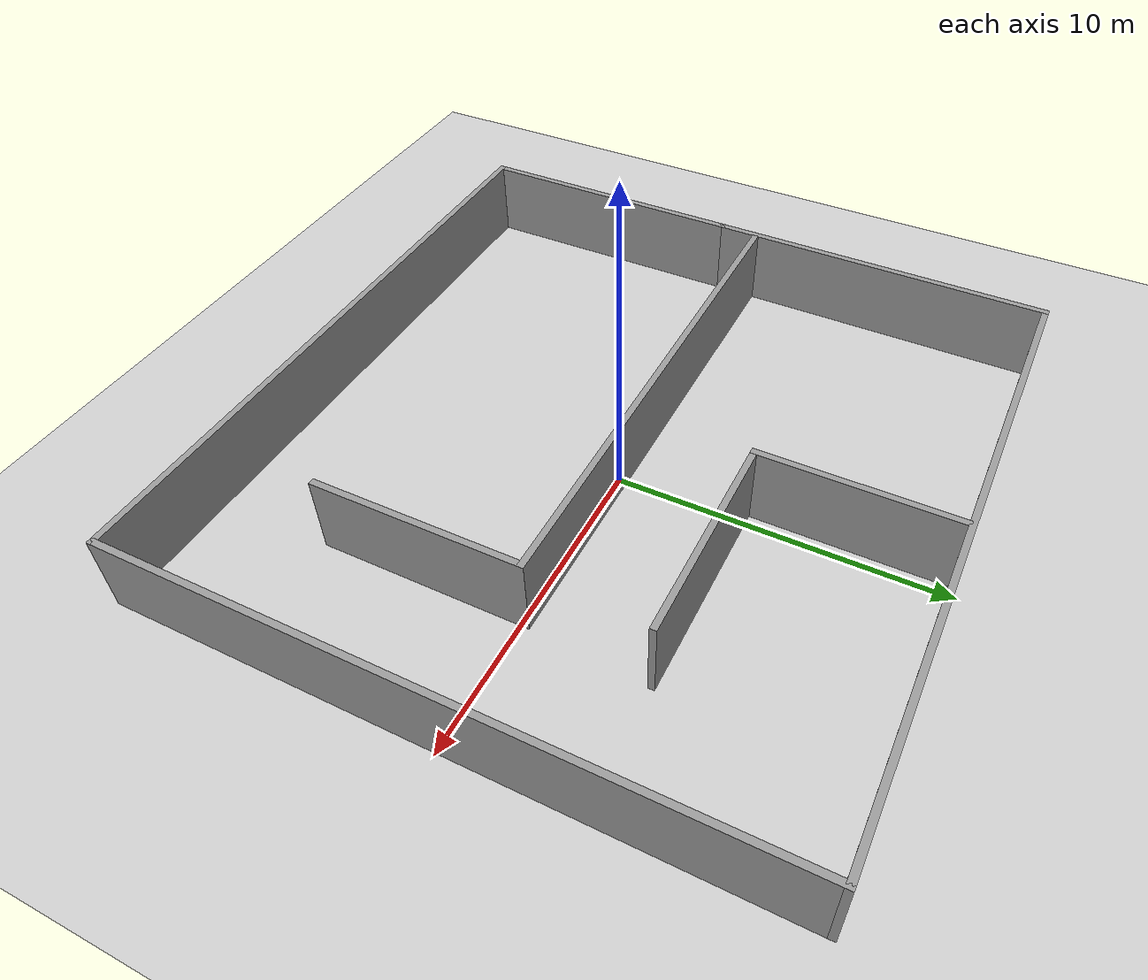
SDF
<sdf version="1.4">
 <world name="default">
  <include><uri>model://sun</uri></include>
  <include><uri>model://ground_plane</uri></include>
  <model name="office">
   <link name="Wall_11">
    <collision name="Wall_11_Collision">
     <geometry><box><size>6.01646 0.2 2.5</size></box></geometry>
     <pose>0 0 1.25 0 -0 0</pose>
    </collision>
    <visual name="Wall_11_Visual">
     <pose>0 0 1.25 0 -0 0</pose>
     <geometry><box><size>6.01646 0.2 2.5</size></box></geometry>
     <material>
      <script><uri>file://media/materials/scripts/gazebo.material</uri><name>Gazebo/Grey</name></script>
     </material>
    </visual>
    <velocity_decay><linear>0</linear><angular>0</angular></velocity_decay>
    <pose>-0.44436 6.75116 0 0 0 -1.5708</pose>
   </link>
   <link name="Wall_12">
    <collision name="Wall_12_Collision">
     <geometry><box><size>6.63524 0.2 2.5</size></box></geometry>
     <pose>0 0 1.25 0 -0 0</pose>
    </collision>
    <visual name="Wall_12_Visual">
     <pose>0 0 1.25 0 -0 0</pose>
     <geometry><box><size>6.63524 0.2 2.5</size></box></geometry>
     <material>
      <script><uri>file://media/materials/scripts/gazebo.material</uri><name>Gazebo/Grey</name></script>
     </material>
    </visual>
    <velocity_decay><linear>0</linear><angular>0</angular></velocity_decay>
    <pose>2.77326 3.84293 0 0 -0 0</pose>
   </link>
   <link name="Wall_2">
    <collision name="Wall_2_Collision">
     <geometry><box><size>8.96801 0.2 2.5</size></box></geometry>
     <pose>0 0 1.25 0 -0 0</pose>
    </collision>
    <visual name="Wall_2_Visual">
     <pose>0 0 1.25 0 -0 0</pose>
     <geometry><box><size>8.96801 0.2 2.5</size></box></geometry>
     <material>
      <script><uri>file://media/materials/scripts/gazebo.material</uri><name>Gazebo/Grey</name></script>
     </material>
    </visual>
    <velocity_decay><linear>0</linear><angular>0</angular></velocity_decay>
    <pose>-10.276 -5.50982 0 0 0 -1.5708</pose>
   </link>
   <link name="Wall_3">
    <collision name="Wall_3_Collision">
     <geometry><box><size>20.3033 0.2 2.5</size></box></geometry>
     <pose>0 0 1.25 0 -0 0</pose>
    </collision>
    <visual name="Wall_3_Visual">
     <pose>0 0 1.25 0 -0 0</pose>
     <geometry><box><size>20.3033 0.2 2.5</size></box></geometry>
     <material>
      <script><uri>file://media/materials/scripts/gazebo.material</uri><name>Gazebo/Grey</name></script>
     </material>
    </visual>
    <velocity_decay><linear>0</linear><angular>0</angular></velocity_decay>
    <pose>-0.224381 -9.89383 0 0 -0 0</pose>
   </link>
   <link name="Wall_4">
    <collision name="Wall_4_Collision">
     <geometry><box><size>19.877 0.2 2.5</size></box></geometry>
     <pose>0 0 1.25 0 -0 0</pose>
    </collision>
    <visual name="Wall_4_Visual">
     <pose>0 0 1.25 0 -0 0</pose>
     <geometry><box><size>19.877 0.2 2.5</size></box></geometry>
     <material>
      <script><uri>file://media/materials/scripts/gazebo.material</uri><name>Gazebo/Grey</name></script>
     </material>
    </visual>
    <velocity_decay><linear>0</linear><angular>0</angular></velocity_decay>
    <pose>9.82727 -0.055341 0 0 -0 1.5708</pose>
   </link>
   <link name="Wall_5">
    <collision name="Wall_5_Collision">
     <geometry><box><size>20.2482 0.2 2.5</size></box></geometry>
     <pose>0 0 1.25 0 -0 0</pose>
    </collision>
    <visual name="Wall_5_Visual">
     <pose>0 0 1.25 0 -0 0</pose>
     <geometry><box><size>20.2482 0.2 2.5</size></box></geometry>
     <material>
      <script><uri>file://media/materials/scripts/gazebo.material</uri><name>Gazebo/Grey</name></script>
     </material>
    </visual>
    <velocity_decay><linear>0</linear><angular>0</angular></velocity_decay>
    <pose>-0.196851 9.78314 0 0 -0 3.14159</pose>
   </link>
   <link name="Wall_6">
    <collision name="Wall_6_Collision">
     <geometry><box><size>11.1091 0.2 2.5</size></box></geometry>
     <pose>0 0 1.25 0 -0 0</pose>
    </collision>
    <visual name="Wall_6_Visual">
     <pose>0 0 1.25 0 -0 0</pose>
     <geometry><box><size>11.1091 0.2 2.5</size></box></geometry>
     <material>
      <script><uri>file://media/materials/scripts/gazebo.material</uri><name>Gazebo/Grey</name></script>
     </material>
    </visual>
    <velocity_decay><linear>0</linear><angular>0</angular></velocity_decay>
    <pose>-10.2485 4.32867 0 0 0 -1.57584</pose>
   </link>
   <link name="Wall_8">
    <collision name="Wall_8_Collision">
     <geometry><box><size>16.0406 0.2 2.5</size></box></geometry>
     <pose>0 0 1.25 0 -0 0</pose>
    </collision>
    <visual name="Wall_8_Visual">
     <pose>0 0 1.25 0 -0 0</pose>
     <geometry><box><size>16.0406 0.2 2.5</size></box></geometry>
     <material>
      <script><uri>file://media/materials/scripts/gazebo.material</uri><name>Gazebo/Grey</name></script>
     </material>
    </visual>
    <velocity_decay><linear>0</linear><angular>0</angular></velocity_decay>
    <pose>-2.17692 0.130291 0 0 -0 0</pose>
   </link>
   <link name="Wall_9">
    <collision name="Wall_9_Collision">
     <geometry><box><size>6.51148 0.2 2.5</size></box></geometry>
     <pose>0 0 1.25 0 -0 0</pose>
    </collision>
    <visual name="Wall_9_Visual">
     <pose>0 0 1.25 0 -0 0</pose>
     <geometry><box><size>6.51148 0.2 2.5</size></box></geometry>
     <material>
      <script><uri>file://media/materials/scripts/gazebo.material</uri><name>Gazebo/Grey</name></script>
     </material>
    </visual>
    <velocity_decay><linear>0</linear><angular>0</angular></velocity_decay>
    <pose>5.74337 -3.02545 0 0 0 -1.5708</pose>
   </link>
   <static>1</static>
  </model>
 </world>
</sdf>
